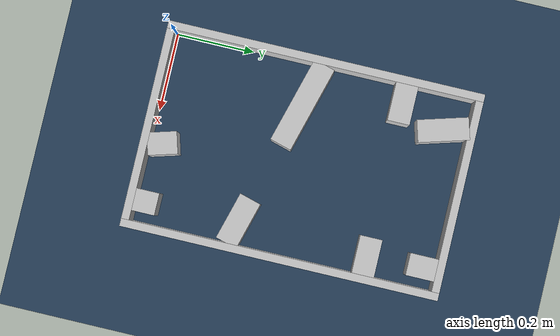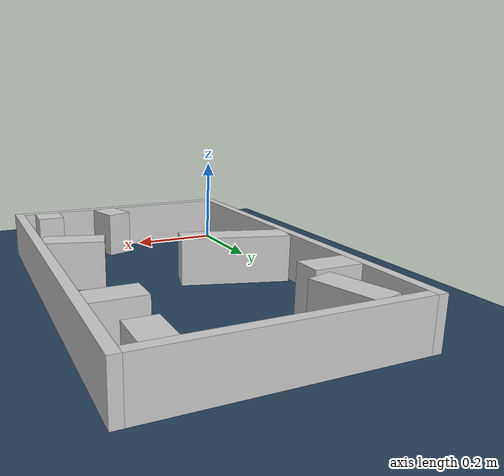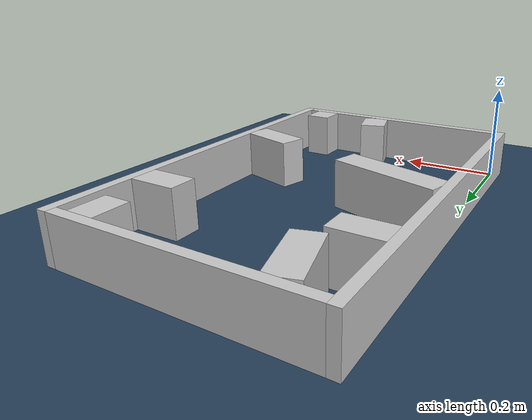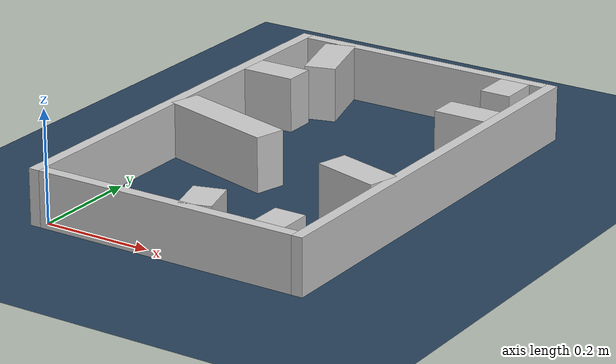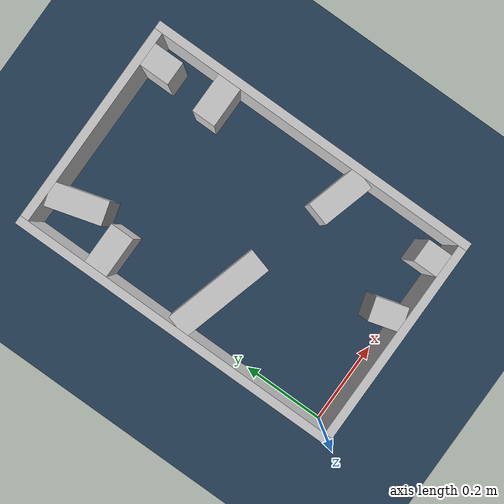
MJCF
<?xml version="1.0" ?>
<mujoco model="generated_real_template">
  <compiler angle="degree"/>
  <option timestep="0.002" integrator="implicitfast" iterations="100" cone="elliptic"/>
  <default>
    <geom density="1"/>
  </default>
  <asset>
    <texture builtin="gradient" height="3072" rgb1="0.3 0.5 0.7" rgb2="0 0 0" type="skybox" width="512"/>
    <texture builtin="checker" height="300" mark="edge" markrgb="0.8 0.8 0.8" name="groundplane" rgb1="0.2 0.3 0.4" rgb2="0.1 0.2 0.3" type="2d" width="300"/>
    <material name="groundplane" reflectance="0.2" texrepeat="5 5" texture="groundplane" texuniform="true"/>
  </asset>
  <worldbody>
    <light dir="0 0 -1" directional="true" pos="0 0 1.5"/>
    <geom name="floor" type="plane" condim="4" friction="0.5 0.005 0.001" material="groundplane" size="0 0 0.05"/>
    <body name="walls">
      <geom name="wall_boundary_left" type="box" condim="4" friction="1.0 0.005 0.0001" rgba="0.8 0.8 0.8 1" pos="-0.010000 0.387500 0.050000" euler="0 0 0.000000" size="0.010000 0.407500 0.050000"/>
      <geom name="wall_boundary_right" type="box" condim="4" friction="1.0 0.005 0.0001" rgba="0.8 0.8 0.8 1" pos="0.500000 0.387500 0.050000" euler="0 0 0.000000" size="0.010000 0.407500 0.050000"/>
      <geom name="wall_boundary_bottom" type="box" condim="4" friction="1.0 0.005 0.0001" rgba="0.8 0.8 0.8 1" pos="0.245000 -0.010000 0.050000" euler="0 0 0.000000" size="0.245000 0.010000 0.050000"/>
      <geom name="wall_boundary_top" type="box" condim="4" friction="1.0 0.005 0.0001" rgba="0.8 0.8 0.8 1" pos="0.245000 0.785000 0.050000" euler="0 0 0.000000" size="0.245000 0.010000 0.050000"/>
      <geom name="wall_inner_1_1" type="box" condim="4" friction="1.0 0.005 0.0001" rgba="0.8 0.8 0.8 1" pos="0.429634 0.265836 0.050000" euler="0 0 164.363794" size="0.062686 0.028500 0.050000"/>
      <geom name="wall_inner_1_2" type="box" condim="4" friction="1.0 0.005 0.0001" rgba="0.8 0.8 0.8 1" pos="0.109993 0.355299 0.050000" euler="0 0 164.363794" size="0.114219 0.028500 0.050000"/>
      <geom name="wall_inner_2_1" type="box" condim="4" friction="1.0 0.005 0.0001" rgba="0.8 0.8 0.8 1" pos="0.049337 0.599002 0.050000" euler="0 0 0.000000" size="0.049337 0.028500 0.050000"/>
      <geom name="wall_inner_2_2" type="box" condim="4" friction="1.0 0.005 0.0001" rgba="0.8 0.8 0.8 1" pos="0.441790 0.599002 0.050000" euler="0 0 0.000000" size="0.048210 0.028500 0.050000"/>
      <geom name="wall_inner_3_1" type="box" condim="4" friction="1.0 0.005 0.0001" rgba="0.8 0.8 0.8 1" pos="0.436644 0.029390 0.050000" euler="0 0 90.000000" size="0.029390 0.028500 0.050000"/>
      <geom name="wall_inner_3_2" type="box" condim="4" friction="1.0 0.005 0.0001" rgba="0.8 0.8 0.8 1" pos="0.436644 0.738779 0.050000" euler="0 0 90.000000" size="0.036221 0.028500 0.050000"/>
      <geom name="wall_inner_4_1" type="box" condim="4" friction="1.0 0.005 0.0001" rgba="0.8 0.8 0.8 1" pos="0.090446 0.712455 0.050000" euler="0 0 -73.991120" size="0.065068 0.028500 0.050000"/>
      <geom name="wall_inner_4_2" type="box" condim="4" friction="1.0 0.005 0.0001" rgba="0.8 0.8 0.8 1" pos="0.284511 0.036066 0.050000" euler="0 0 -73.991120" size="0.037521 0.028500 0.050000"/>
    </body>
  </worldbody>
</mujoco>
